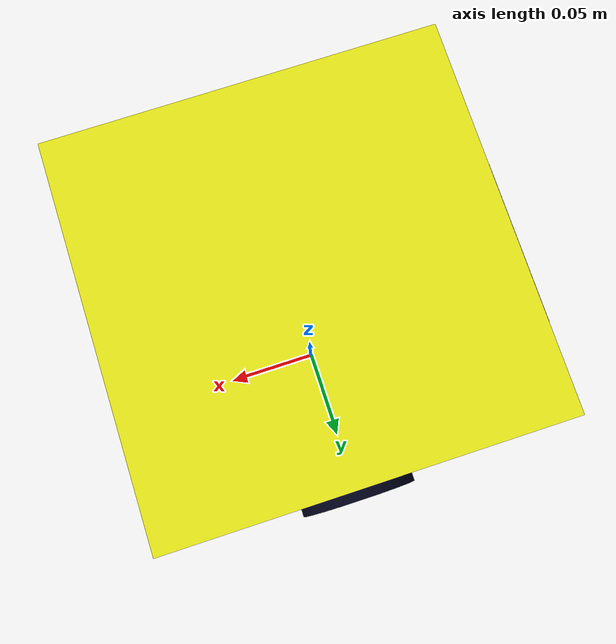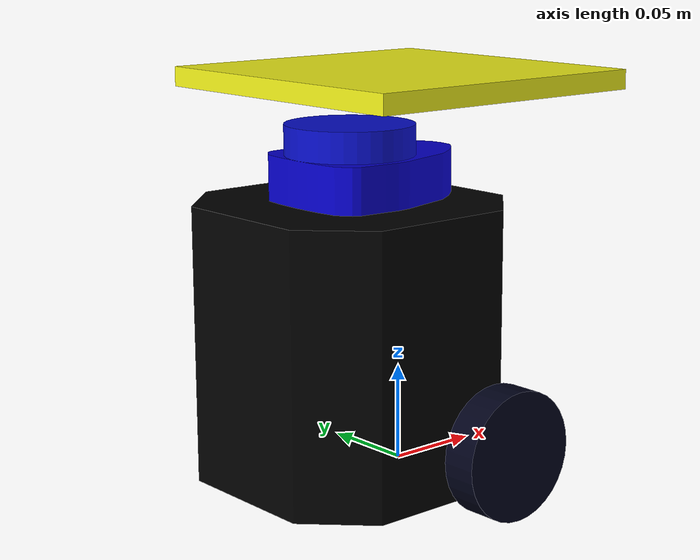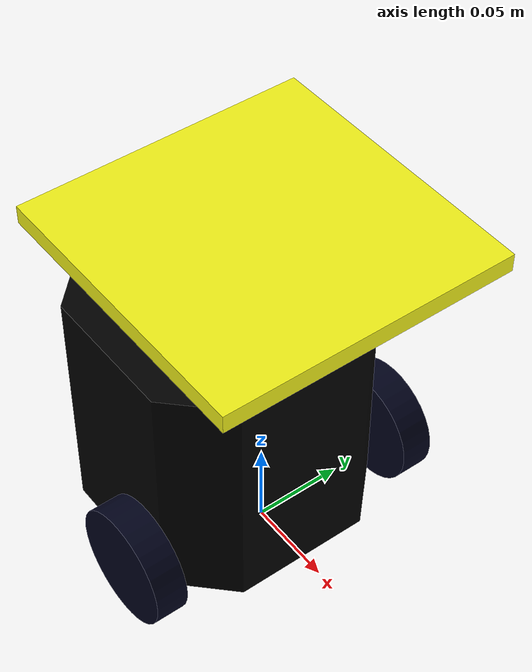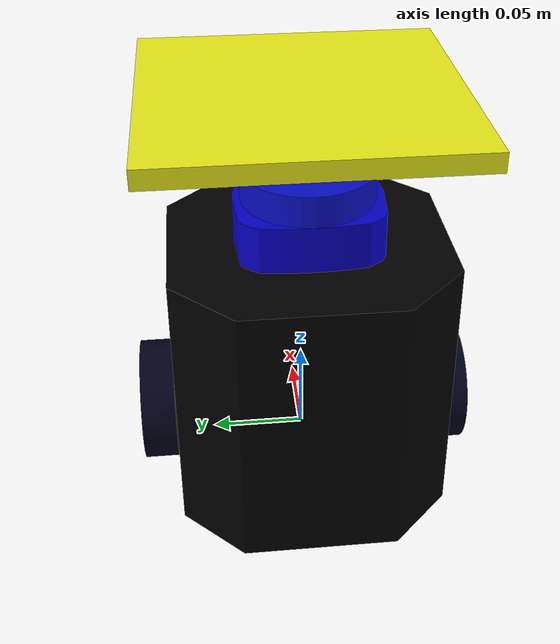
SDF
<?xml version="1.0" ?>
<sdf version="1.5">
  <model name="turtlebot3_burger">

    <link name="base">

      <inertial>
        <pose>-0.032 0 0.070 0 0 0</pose>
        <inertia>
          <ixx>0.001</ixx>
          <ixy>0.000</ixy>
          <ixz>0.000</ixz>
          <iyy>0.001</iyy>
          <iyz>0.000</iyz>
          <izz>0.001</izz>
        </inertia>
        <mass>1.0</mass>
      </inertial>

      <collision name="base_collision">
        <pose>-0.032 0 0.070 0 0 0</pose>
        <geometry>
          <box>
            <size>0.140 0.140 0.140</size>
          </box>
        </geometry>
      </collision>

      <visual name="base_visual">
        <pose>-0.032 0 0 0 0 0</pose>
        <geometry>
          <mesh>
            <uri>model://turtlebot3_burger/meshes/burger_base.dae</uri>
            <scale>0.001 0.001 0.001</scale>
          </mesh>
        </geometry>
      </visual>

      <collision name="caster_collision">
        <pose>-0.081 0 -0.004 0 0 0</pose>
        <geometry>
          <sphere>
            <radius>0.005000</radius>
          </sphere>
        </geometry>
        <surface>
          <friction>
            <ode>
              <mu>100000.0</mu>
              <mu2>100000.0</mu2>
              <fdir1>0 0 0</fdir1>
              <slip1>0</slip1>
              <slip2>0</slip2>
            </ode>
          </friction>
        </surface>
      </collision>
    </link>

  <link name="lidar">
    <inertial>
      <pose>-0.020 0 0.161 0 0 0</pose>
      <inertia>
        <ixx>0.001</ixx>
        <ixy>0.000</ixy>
        <ixz>0.000</ixz>
        <iyy>0.001</iyy>
        <iyz>0.000</iyz>
        <izz>0.001</izz>
      </inertia>
      <mass>0.125</mass>
    </inertial>

    <collision name="lidar_sensor_collision">
        <pose>-0.020 0 0.161 0 0 0</pose>
        <geometry>
          <cylinder>
            <radius>0.0508</radius>
            <length>0.055</length>
          </cylinder>
        </geometry>
      </collision>

      <visual name="lidar_sensor_visual">
        <pose>-0.032 0 0.171 0 0 0</pose>
        <geometry>
          <mesh>
            <uri>model://turtlebot3_burger/meshes/lds.dae</uri>
            <scale>0.001 0.001 0.001</scale>
          </mesh>
        </geometry>
      </visual>

      <sensor name="hls_lfcd_lds" type="ray">
        <always_on>1</always_on>
        <visualize>0</visualize>
        <pose>-0.032 0 0.171 0 0 0</pose>
        <update_rate>1800</update_rate>
        <ray>
          <scan>
            <horizontal>
              <samples>360</samples>
              <resolution>1.000000</resolution>
              <min_angle>0.000000</min_angle>
              <max_angle>6.280000</max_angle>
            </horizontal>
          </scan>
          <range>
            <min>0.120000</min>
            <max>3.5</max>
            <resolution>0.015000</resolution>
          </range>
          <noise>
            <type>gaussian</type>
            <mean>0.0</mean>
            <stddev>0.01</stddev>
          </noise>
        </ray>
      </sensor>
    </link>

    <link name="left_wheel">

      <inertial>
        <pose>0 0.08 0.023 -1.57 0 0</pose>
        <inertia>
          <ixx>0.001</ixx>
          <ixy>0.000</ixy>
          <ixz>0.000</ixz>
          <iyy>0.001</iyy>
          <iyz>0.000</iyz>
          <izz>0.001</izz>
        </inertia>
        <mass>0.1</mass>
      </inertial>

      <collision name="left_wheel_collision">
        <pose>0 0.08 0.023 -1.57 0 0</pose>
        <geometry>
          <cylinder>
            <radius>0.033</radius>
            <length>0.018</length>
          </cylinder>
        </geometry>
          <surface>
          <!-- This friction pamareter don't contain reliable data!! -->
            <friction>
              <ode>
                <mu>100000.0</mu>
                <mu2>100000.0</mu2>
                <fdir1>0 0 0</fdir1>
                <slip1>0.0</slip1>
                <slip2>0.0</slip2>
              </ode>
          </friction>
        </surface>
      </collision>

      <visual name="left_wheel_visual">
        <pose>0 0.08 0.023 0 0 0</pose>
        <geometry>
          <mesh>
            <uri>model://turtlebot3_burger/meshes/tire.dae</uri>
            <scale>0.001 0.001 0.001</scale>
          </mesh>
        </geometry>
      </visual>
    </link>

    <link name="right_wheel">

      <inertial>
        <pose>0.0 -0.08 0.023 -1.57 0 0</pose>
        <inertia>
          <ixx>0.001</ixx>
          <ixy>0.000</ixy>
          <ixz>0.000</ixz>
          <iyy>0.001</iyy>
          <iyz>0.000</iyz>
          <izz>0.001</izz>
        </inertia>
        <mass>0.1</mass>
      </inertial>

      <collision name="right_wheel_collision">
        <pose>0.0 -0.08 0.023 -1.57 0 0</pose>
        <geometry>
          <cylinder>
            <radius>0.033</radius>
            <length>0.018</length>
          </cylinder>
        </geometry>
          <surface>
          <!-- This friction pamareter don't contain reliable data!! -->
            <friction>
              <ode>
                <mu>100000.0</mu>
                <mu2>100000.0</mu2>
                <fdir1>0 0 0</fdir1>
                <slip1>0.0</slip1>
                <slip2>0.0</slip2>
              </ode>
          </friction>
        </surface>
      </collision>

      <visual name="right_wheel_visual">
        <pose>0.0 -0.08 0.023 0 0 0</pose>
        <geometry>
          <mesh>
            <uri>model://turtlebot3_burger/meshes/tire.dae</uri>
            <scale>0.001 0.001 0.001</scale>
          </mesh>
        </geometry>
      </visual>
    </link>

    <joint name="left_wheel_joint" type="revolute">
      <parent>base</parent>
      <child>left_wheel</child>
      <pose>0.0 0.08 0.023 -1.57 0 0</pose>
      <axis>
        <xyz>0 1 0</xyz>
      </axis>
    </joint>

    <joint name="right_wheel_joint" type="revolute">
      <parent>base</parent>
      <child>right_wheel</child>
      <pose>0.0 -0.08 0.023 -1.57 0 0</pose>
      <axis>
        <xyz>0 1 0</xyz>
      </axis>
    </joint>

    <joint name="lidar_joint" type="fixed">
      <parent>base</parent>
      <child>lidar</child>
      <pose>-0.032 0 0.171 0 0 0</pose>
      <axis>
        <xyz>0 0 1</xyz>
        <use_parent_model_frame>true</use_parent_model_frame>
      </axis>
    </joint>

    <!-- Demo payloads added around the upstream TurtleBot3 Burger model. -->
    <link name="fiducial">
      <pose>0 0 0.20 0 0 0</pose>
      <visual name="marker">
        <geometry><box><size>0.16 0.16 0.01</size></box></geometry>
        <material><ambient>0.95 0.95 0.10 1</ambient><diffuse>0.95 0.95 0.10 1</diffuse></material>
      </visual>
    </link>
    <joint name="fiducial_joint" type="fixed"><parent>base</parent><child>fiducial</child></joint>

    <link name="camera_link">
      <pose>0.06 0 0.16 0 0 0</pose>
      <sensor name="front_camera" type="camera">
        <always_on>true</always_on>
        <update_rate>20</update_rate>
        <visualize>false</visualize>
        <camera>
          <horizontal_fov>1.047198</horizontal_fov>
          <image><width>640</width><height>480</height><format>R8G8B8</format></image>
          <clip><near>0.05</near><far>20.0</far></clip>
        </camera>
        <plugin name="front_camera_ros" filename="libgazebo_ros_camera.so">
          <robotNamespace>/ugv_0</robotNamespace>
          <cameraName>camera</cameraName>
          <imageTopicName>image_raw</imageTopicName>
          <cameraInfoTopicName>camera_info</cameraInfoTopicName>
          <frameName>ugv_0/camera_link</frameName>
        </plugin>
      </sensor>
    </link>
    <joint name="camera_joint" type="fixed"><parent>base</parent><child>camera_link</child></joint>

    <plugin name="diff_drive" filename="libgazebo_ros_diff_drive.so">
      <robotNamespace>/ugv_0</robotNamespace>
      <alwaysOn>true</alwaysOn><updateRate>50</updateRate>
      <leftJoint>left_wheel_joint</leftJoint><rightJoint>right_wheel_joint</rightJoint>
      <wheelSeparation>0.16</wheelSeparation><wheelDiameter>0.066</wheelDiameter>
      <wheelTorque>4</wheelTorque><wheelAcceleration>3.0</wheelAcceleration>
      <commandTopic>cmd_vel</commandTopic><odometryTopic>odom</odometryTopic>
      <odometryFrame>ugv_0/odom</odometryFrame><robotBaseFrame>ugv_0/base_link</robotBaseFrame>
      <publishOdomTF>true</publishOdomTF><publishWheelTF>false</publishWheelTF>
      <odometrySource>encoder</odometrySource><legacyMode>false</legacyMode>
    </plugin>

    <plugin name="relative_pose_sensor" filename="librelative_pose_sensor_plugin.so">
      <camera_model_name>iris_0</camera_model_name><camera_link_name>D435i::link</camera_link_name>
      <marker_link_name>fiducial</marker_link_name><camera_frame>iris_0/camera_link</camera_frame>
      <observation_topic>/iris_0/ugv_observation</observation_topic><update_rate>15.0</update_rate>
      <max_distance>8.0</max_distance><horizontal_fov>1.047198</horizontal_fov><vertical_fov>0.785398</vertical_fov>
      <position_stddev>0.0</position_stddev><orientation_stddev>0.0</orientation_stddev>
    </plugin>
  <static>0</static>
  </model>
</sdf>
